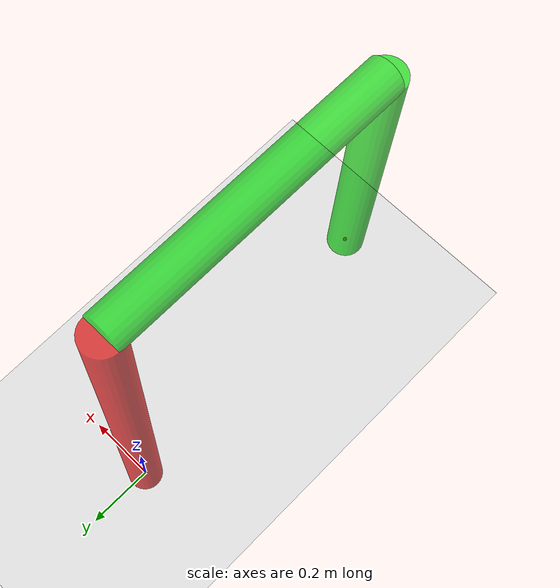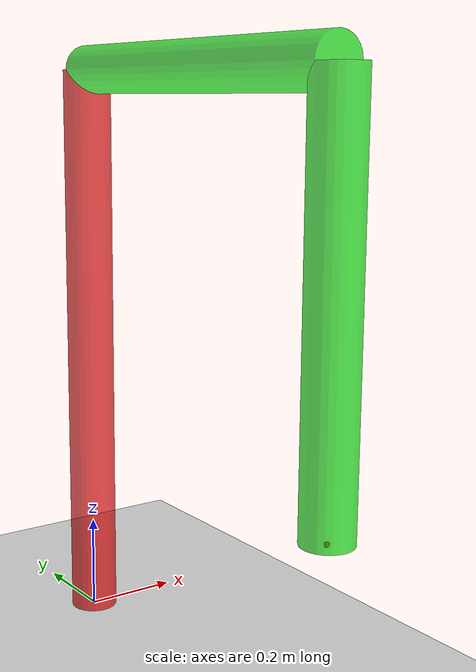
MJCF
<mujoco>
<option gravity="0 0 -9.81" integrator = "RK4"/>

    <asset>
        <mesh name="camera_mesh" file="camera.stl" scale="0.01 0.01 0.01"/>
    </asset>

	<worldbody>
		<light diffuse=".5 .5 .5" pos="0 0 3" dir="0 0 -1"/>
		<geom type="plane" size="2.5 2.5 0.1" rgba=".9 .9 .9 1" pos="0 0 0"/>
		<body name="frame1" pos="0 0 1.2" xyaxes="1 0 0 0 0 1">

			<inertial mass=".01" pos="0 0 0.25" fullinertia="1 1 0.1 0 0 0"/>
			<joint name="joint1" type="hinge" axis="0 1 0" pos="0 -1.2 0"/>
			<geom type="cylinder" size=".05 0.6" pos="0 -.6 0" xyaxes="1 0 0 0 0 -1" rgba="0.9 0 0 0.7"/>
			<body name="frame2" pos="0 0 .8" xyaxes="1 0 0 0 0 1">
				<inertial mass="1" pos="0 0 0" fullinertia="1 .1 1 0 0 0"/>
				<joint name="joint2" type="hinge" axis="0 1 0" pos="0 -.8  0 "/>
				<geom type="cylinder" size=".05 0.4" pos="0 -0.4 0 " xyaxes="1 0 0 0 0 -1" rgba="0 0.9 0 0.7"/>
				<body name="end-effector" pos="0 0 0.8" xyaxes="0 -1 0 1 0 0">
					<inertial mass="100" pos="0 0 0" fullinertia="1 1 0.1 0 0 0"/>
					<site name="end-effector-sensor" pos="0 0 0" size=".005" rgba="1 0 0 1" type="sphere"/>
					<site name="end-effector_spatial_lin_vel-sensor" pos=".8 0 .4" size=".005" rgba="1 0 0 1" type="sphere"/>
					<geom type="cylinder" size=".05 0.4" pos="0 0 -0.4" rgba="0 0.9 0 .7"/>
				</body>
			</body>
		</body>
	</worldbody>

	<sensor>
		<!-- Spatial velocities: expressed in the world frame -->
		<framelinvel name="spatial-linear-vel" objtype="site" objname="end-effector_spatial_lin_vel-sensor" reftype="world" refname="world"/>
		<frameangvel name="spatial-ang-vel" objtype="site" objname="end-effector-sensor" reftype="world" refname="world"/>

		<!-- Body velocities: expressed in the end-effector's (body) frame -->
		<velocimeter name="body-linear-vel" site="end-effector-sensor"/>
		<gyro name="body-ang-vel" site="end-effector-sensor"/>

		<!-- Joint sensors for additional verification -->
		<jointpos name="joint1-position" joint="joint1"/>
		<jointpos name="joint2-position" joint="joint2"/>

		<jointvel name="joint1-velocity" joint="joint1"/>
		<jointvel name="joint2-velocity" joint="joint2"/>

	</sensor>

	<keyframe>
	<key name="home" qpos="1.570796327 0"/><!-- theta1, theta2-->
	<key name="Q1" qpos="2.617993878 -1.346396852"/><!-- theta1, theta2-->
	</keyframe>
</mujoco>
